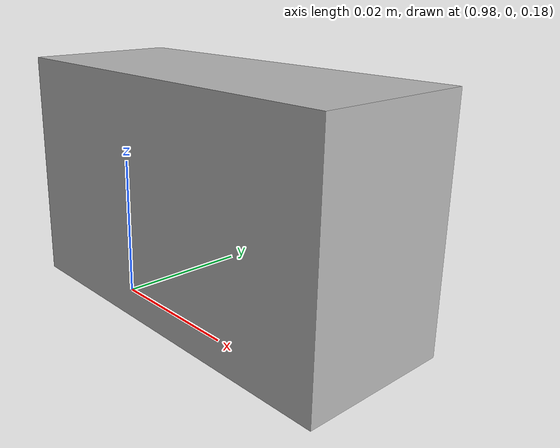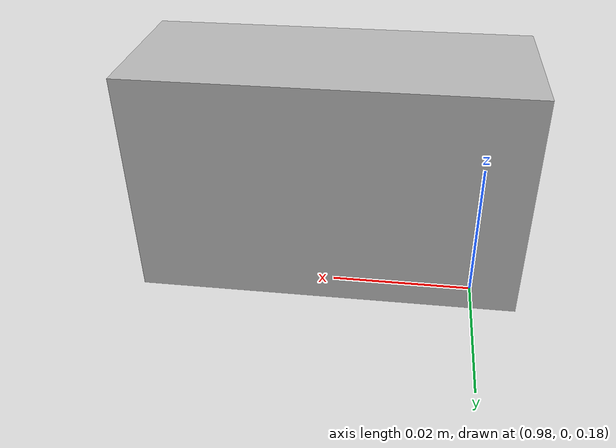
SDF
<?xml version="1.0" encoding="utf-8"?>
<sdf version="1.6">
    <model name="imu">
        <pose>1 0 0.2 0 0 0</pose>
        <link name="imu_base">
            <visual name="visual">
                <geometry>
                    <box>
                        <size>0.05 0.02 0.03</size>
                    </box>
                </geometry>
            </visual>
            <collision name="collision">
                <geometry>
                    <box>
                        <size>0.05 0.02 0.03</size>
                    </box>
                </geometry>
            </collision>
            <sensor name="imu_sensor" type="imu">
                <always_on>1</always_on>
                <update_rate>500</update_rate>
                <topic>imu</topic>
                <imu>
                        <enable_orientation>0</enable_orientation>
                        <angular_velocity>
                            <x>
                                <noise type="gaussian">
                                    <mean>0</mean>
                                    <stddev>0.009</stddev>
                                    <bias_mean>0.00075</bias_mean>
                                    <bias_stddev>0.005</bias_stddev>
                                    <dynamic_bias_stddev>0.00002</dynamic_bias_stddev>
                                    <dynamic_bias_correlation_time>400.0</dynamic_bias_correlation_time>
                                    <precision>0.00025</precision>
                                </noise>
                            </x>
                            <y>
                                <noise type="gaussian">
                                    <mean>0</mean>
                                    <stddev>0.009</stddev>
                                    <bias_mean>0.00075</bias_mean>
                                    <bias_stddev>0.005</bias_stddev>
                                    <dynamic_bias_stddev>0.00002</dynamic_bias_stddev>
                                    <dynamic_bias_correlation_time>400.0</dynamic_bias_correlation_time>
                                    <precision>0.00025</precision>
                                </noise>
                            </y>
                            <z>
                                <noise type="gaussian">
                                    <mean>0</mean>
                                    <stddev>0.009</stddev>
                                    <bias_mean>0.00075</bias_mean>
                                    <bias_stddev>0.005</bias_stddev>
                                    <dynamic_bias_stddev>0.00002</dynamic_bias_stddev>
                                    <dynamic_bias_correlation_time>400.0</dynamic_bias_correlation_time>
                                    <precision>0.00025</precision>
                                </noise>
                            </z>
                        </angular_velocity>
                        <linear_acceleration>
                            <x>
                                <noise type="gaussian">
                                    <mean>0</mean>
                                    <stddev>0.021</stddev>
                                    <bias_mean>0.05</bias_mean>
                                    <bias_stddev>0.0075</bias_stddev>
                                    <dynamic_bias_stddev>0.000375</dynamic_bias_stddev>
                                    <dynamic_bias_correlation_time>175.0</dynamic_bias_correlation_time>
                                    <precision>0.005</precision>
                                </noise>
                            </x>
                            <y>
                                <noise type="gaussian">
                                    <mean>0</mean>
                                    <stddev>0.021</stddev>
                                    <bias_mean>0.05</bias_mean>
                                    <bias_stddev>0.0075</bias_stddev>
                                    <dynamic_bias_stddev>0.000375</dynamic_bias_stddev>
                                    <dynamic_bias_correlation_time>175.0</dynamic_bias_correlation_time>
                                    <precision>0.005</precision>
                                </noise>
                            </y>
                            <z>
                                <noise type="gaussian">
                                    <mean>0</mean>
                                    <stddev>0.021</stddev>
                                    <bias_mean>0.05</bias_mean>
                                    <bias_stddev>0.0075</bias_stddev>
                                    <dynamic_bias_stddev>0.000375</dynamic_bias_stddev>
                                    <dynamic_bias_correlation_time>175.0</dynamic_bias_correlation_time>
                                    <precision>0.005</precision>
                                </noise>
                            </z>
                        </linear_acceleration>
                  </imu>
              </sensor>
        </link>
    </model>
</sdf>
